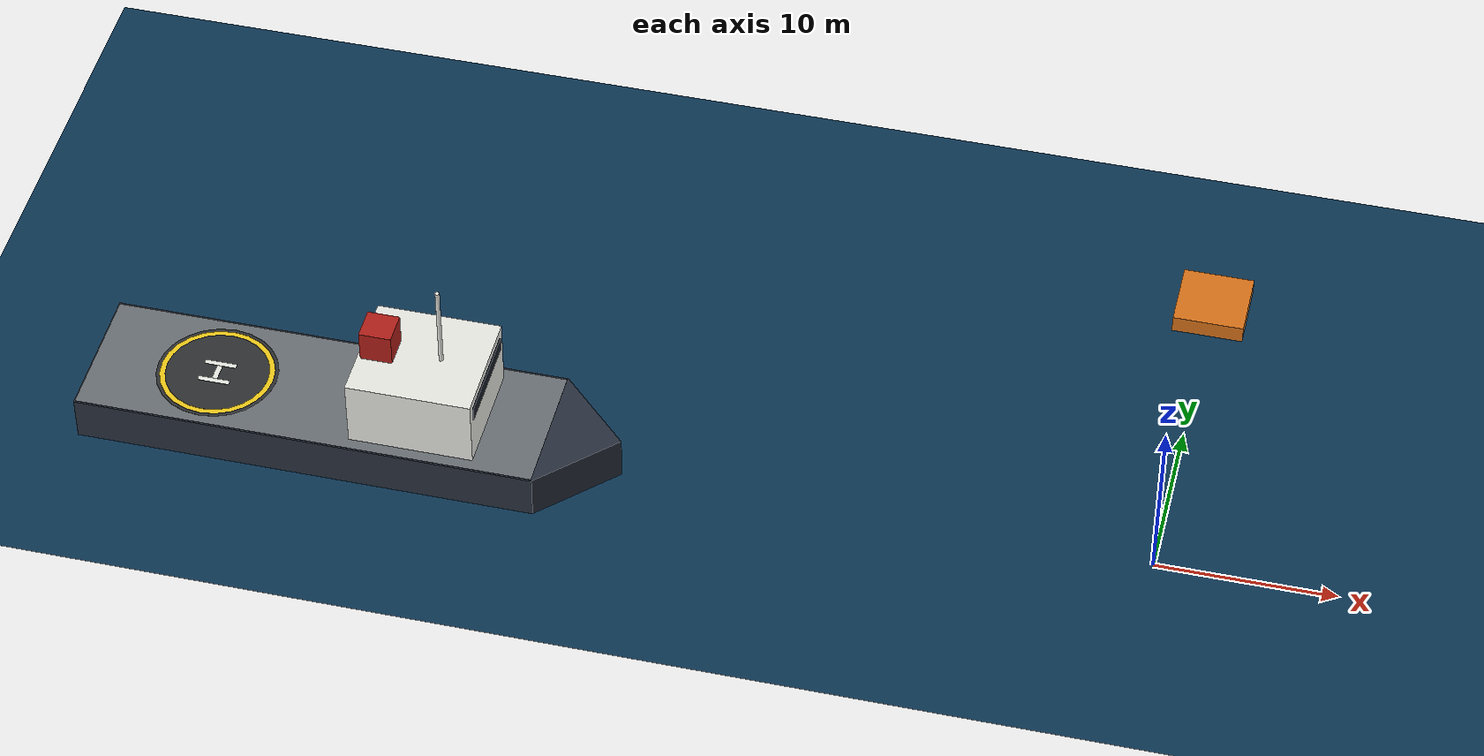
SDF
<?xml version="1.0" encoding="UTF-8"?>
<sdf version="1.9">
  <world name="ship_medium">
    <physics type="ode">
      <max_step_size>0.004</max_step_size>
      <real_time_factor>1.0</real_time_factor>
      <real_time_update_rate>250</real_time_update_rate>
    </physics>
    <gravity>0 0 -9.8</gravity>
    <magnetic_field>6e-06 2.3e-05 -4.2e-05</magnetic_field>
    <atmosphere type="adiabatic"/>
    <scene>
      <grid>false</grid>
      <ambient>0.420 0.420 0.460 1.000</ambient>
      <background>0.520 0.580 0.640 1.000</background>
      <shadows>true</shadows>
    </scene>

    <model name="ocean">
      <static>true</static>
      <link name="surface">
        <visual name="water">
          <cast_shadows>false</cast_shadows>
          <geometry><plane><normal>0 0 1</normal><size>4000 4000</size></plane></geometry>
          <material>
            <ambient>0.050 0.210 0.330 1.000</ambient>
            <diffuse>0.050 0.210 0.330 1.000</diffuse>
            <specular>0.7 0.7 0.7 1</specular>
            <pbr><metal><metalness>0.0</metalness><roughness>0.12</roughness></metal></pbr>
          </material>
        </visual>
      </link>
    </model>

    <model name="seabed">
      <static>true</static>
      <pose>0 0 -40 0 0 0</pose>
      <link name="link">
        <collision name="bottom">
          <geometry><plane><normal>0 0 1</normal><size>4000 4000</size></plane></geometry>
        </collision>
      </link>
    </model>

    <model name="launch_pad">
      <static>true</static>
      <pose>0 20 0.5 0 0 0</pose>
      <link name="link">
        <collision name="c">
          <geometry><box><size>4 4 1</size></box></geometry>
          <surface><friction><ode><mu>1.2</mu><mu2>1.2</mu2></ode></friction></surface>
        </collision>
        <visual name="v">
          <geometry><box><size>4 4 1</size></box></geometry>
          <material><ambient>0.85 0.45 0.10 1</ambient><diffuse>0.85 0.45 0.10 1</diffuse></material>
        </visual>
      </link>
    </model>

    <model name="ship">
      <pose>-44.500 -0.000 0 0 0 0.000000</pose>
      <link name="hull">
        <gravity>false</gravity>
        <inertial>
          <mass>200000</mass>
          <inertia>
            <ixx>1.5e6</ixx><ixy>0</ixy><ixz>0</ixz>
            <iyy>1.2e7</iyy><iyz>0</iyz><izz>1.2e7</izz>
          </inertia>
        </inertial>
        <collision name="hull_c"><pose>-2 0 0 0 0 0</pose><geometry><box><size>26 8 5</size></box></geometry><surface><friction><ode><mu>1.2</mu><mu2>1.2</mu2></ode></friction></surface></collision>
        <visual name="hull_v"><pose>-2 0 0 0 0 0</pose><geometry><box><size>26 8 5</size></box></geometry><material><ambient>0.160 0.190 0.240 1.000</ambient><diffuse>0.160 0.190 0.240 1.000</diffuse><specular>0.300 0.300 0.300 1.000</specular></material></visual>
        <collision name="bow_c"><pose>11 0 0 0 0 0.785398</pose><geometry><box><size>5.657 5.657 5</size></box></geometry><surface><friction><ode><mu>1.2</mu><mu2>1.2</mu2></ode></friction></surface></collision>
        <visual name="bow_v"><pose>11 0 0 0 0 0.785398</pose><geometry><box><size>5.657 5.657 5</size></box></geometry><material><ambient>0.160 0.190 0.240 1.000</ambient><diffuse>0.160 0.190 0.240 1.000</diffuse><specular>0.300 0.300 0.300 1.000</specular></material></visual>
        <visual name="deck_v"><pose>-2 0 2.505 0 0 0</pose><geometry><box><size>25.9 7.8 0.01</size></box></geometry><material><ambient>0.420 0.440 0.460 1.000</ambient><diffuse>0.420 0.440 0.460 1.000</diffuse><specular>0.100 0.100 0.100 1.000</specular></material></visual>
        <collision name="bridge_c"><pose>4 0 4.5 0 0 0</pose><geometry><box><size>7 6.5 4</size></box></geometry><surface><friction><ode><mu>1.2</mu><mu2>1.2</mu2></ode></friction></surface></collision>
        <visual name="bridge_v"><pose>4 0 4.5 0 0 0</pose><geometry><box><size>7 6.5 4</size></box></geometry><material><ambient>0.920 0.920 0.900 1.000</ambient><diffuse>0.920 0.920 0.900 1.000</diffuse><specular>0.400 0.400 0.400 1.000</specular></material></visual>
        <visual name="windows_v"><pose>7.53 0 5.6 0 0 0</pose><geometry><box><size>0.06 5.6 0.8</size></box></geometry><material><ambient>0.080 0.100 0.140 1.000</ambient><diffuse>0.080 0.100 0.140 1.000</diffuse><specular>0.900 0.900 0.900 1.000</specular></material></visual>
        <visual name="funnel_v"><pose>1.6 0 7.4 0 0 0</pose><geometry><box><size>1.8 1.8 1.8</size></box></geometry><material><ambient>0.700 0.120 0.100 1.000</ambient><diffuse>0.700 0.120 0.100 1.000</diffuse><specular>0.300 0.300 0.300 1.000</specular></material></visual>
        <visual name="mast_v"><pose>5 0 9.0 0 0 0</pose><geometry><cylinder><radius>0.12</radius><length>5</length></cylinder></geometry><material><ambient>0.920 0.920 0.900 1.000</ambient><diffuse>0.920 0.920 0.900 1.000</diffuse><specular>0.200 0.200 0.200 1.000</specular></material></visual>
        <visual name="pad_v"><pose>-8 0 2.512 0 0 0</pose><geometry><cylinder><radius>3.4</radius><length>0.01</length></cylinder></geometry><material><ambient>0.180 0.190 0.200 1.000</ambient><diffuse>0.180 0.190 0.200 1.000</diffuse><specular>0.100 0.100 0.100 1.000</specular></material></visual>
        <visual name="ring_v"><pose>-8 0 2.518 0 0 0</pose><geometry><cylinder><radius>3.2</radius><length>0.01</length></cylinder></geometry><material><ambient>0.950 0.800 0.100 1.000</ambient><diffuse>0.950 0.800 0.100 1.000</diffuse><specular>0.200 0.200 0.200 1.000</specular></material></visual>
        <visual name="ring_in_v"><pose>-8 0 2.524 0 0 0</pose><geometry><cylinder><radius>2.9</radius><length>0.01</length></cylinder></geometry><material><ambient>0.180 0.190 0.200 1.000</ambient><diffuse>0.180 0.190 0.200 1.000</diffuse><specular>0.100 0.100 0.100 1.000</specular></material></visual>
        <visual name="h_l_v"><pose>-8 0.65 2.53 0 0 0</pose><geometry><box><size>1.8 0.3 0.01</size></box></geometry><material><ambient>0.920 0.920 0.900 1.000</ambient><diffuse>0.920 0.920 0.900 1.000</diffuse><specular>0.200 0.200 0.200 1.000</specular></material></visual>
        <visual name="h_r_v"><pose>-8 -0.65 2.53 0 0 0</pose><geometry><box><size>1.8 0.3 0.01</size></box></geometry><material><ambient>0.920 0.920 0.900 1.000</ambient><diffuse>0.920 0.920 0.900 1.000</diffuse><specular>0.200 0.200 0.200 1.000</specular></material></visual>
        <visual name="h_x_v"><pose>-8 0 2.53 0 0 0</pose><geometry><box><size>0.3 1.0 0.01</size></box></geometry><material><ambient>0.920 0.920 0.900 1.000</ambient><diffuse>0.920 0.920 0.900 1.000</diffuse><specular>0.200 0.200 0.200 1.000</specular></material></visual>
      </link>
      <plugin filename="ShipWaveMotion" name="deck::ShipWaveMotion">
        <speed>1.5</speed>
        <heave_amp>0.5</heave_amp>
        <heave_period>7.0</heave_period>
        <roll_amp_deg>4.0</roll_amp_deg>
        <roll_period>8.0</roll_period>
        <pitch_amp_deg>2.0</pitch_amp_deg>
        <pitch_period>6.0</pitch_period>
        <yaw_amp_deg>1.0</yaw_amp_deg>
        <yaw_period>14.0</yaw_period>
        <irregularity>0.35</irregularity>
        <seed>23</seed>
        <wind_speed>7.0</wind_speed>
        <wind_dir_deg>40.0</wind_dir_deg>
        <gust_std>1.5</gust_std>
        <gust_tau>2.0</gust_tau>
        <wind_drag>0.35</wind_drag>
        <wind_target>x500_0</wind_target>
      </plugin>
    </model>

    <light name="sun" type="directional">
      <pose>0 0 500 0 0 0</pose>
      <cast_shadows>true</cast_shadows>
      <intensity>0.75</intensity>
      <direction>0.3 0.5 -0.8</direction>
      <diffuse>0.9 0.9 0.9 1</diffuse>
      <specular>0.3 0.3 0.3 1</specular>
    </light>

    <spherical_coordinates>
      <surface_model>EARTH_WGS84</surface_model>
      <world_frame_orientation>ENU</world_frame_orientation>
      <latitude_deg>47.397971057728974</latitude_deg>
      <longitude_deg>8.546163739800146</longitude_deg>
      <elevation>0</elevation>
    </spherical_coordinates>
  </world>
</sdf>
